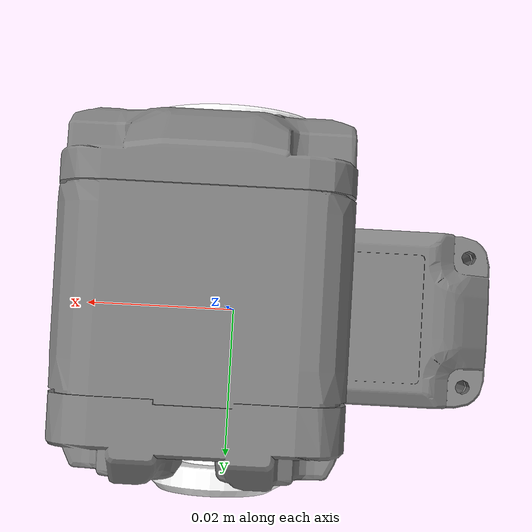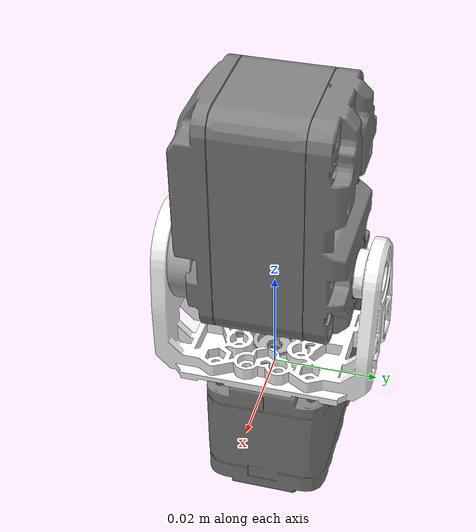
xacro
<?xml version="1.0"?>
<!-- HerkuleX PanTilt Chain -->

<robot name="HerkuleX" xmlns:xacro="http://ros.org/wiki/xacro">
  <!-- Import Rviz colors -->
  <xacro:include filename="$(find HerkuleX_description)/urdf/materials.xacro" />
  <!-- PI -->
  <xacro:property name="PI" value="3.1415926" />

  <link name="base"/>
  <joint name="fixed" type="fixed">
    <parent link="base"/>
    <child link="link1"/>
     <origin xyz="0 0 0.00313" rpy="0 0 0"/>
  </joint>

  <link name="link1">
    <collision>
      <origin xyz="0 0 0" rpy="0 0 0"/>
      <geometry>
        <mesh filename="package://HerkuleX_description/meshes//DRS_0101.stl" scale="0.001 0.001 0.001"/>
      </geometry>
     	<material name="DarkGrey"/>
    </collision>
    <visual>
      <origin xyz="0 0 0" rpy="0 0 0"/>
      <geometry>
        <mesh filename="package://HerkuleX_description/meshes//DRS_0101.stl" scale="0.001 0.001 0.001"/>
      </geometry>
      	<material name="DarkGrey"/>
    </visual>
    <inertial>
      <origin xyz="0 0 0" rpy="0 0 0"/>
      <mass value="1"/>
      <inertia ixx="1.0" ixy="0.0" ixz="0.0" iyy="1.0" iyz="0.0" izz="1.0"/>
    </inertial>
  </link>

  <joint name="joint1" type="revolute">
    <parent link="link1"/>
    <child link="horn1"/>
    <origin xyz="0 0 0" rpy="0 0 0"/>
    <axis xyz="0 0 1"/>
    <limit effort="30" lower="-2.617" upper="2.617" velocity="1.571"/>
  </joint>

  <link name="horn1">
    <collision>
      <origin xyz="0 0 0" rpy="0 0 0"/>
      <geometry>
        <mesh filename="package://HerkuleX_description/meshes//horn.stl" scale="0.001 0.001 0.001"/>
      </geometry>
     	<material name="Grey"/>
    </collision>
    <visual>
      <origin xyz="0 0 0" rpy="0 0 0"/>
      <geometry>
        <mesh filename="package://HerkuleX_description/meshes//horn.stl" scale="0.001 0.001 0.001"/>
      </geometry>
      	<material name="Grey"/>
    </visual>
    <inertial>
      <origin xyz="0 0 0" rpy="0 0 0"/>
      <mass value="1"/>
      <inertia ixx="1.0" ixy="0.0" ixz="0.0" iyy="1.0" iyz="0.0" izz="1.0"/>
    </inertial>
  </link>

  <joint name="fixed1" type="fixed">
    <parent link="horn1"/>
    <child link="DRB_0009"/>
  </joint>

  <link name="DRB_0009">
    <collision>
      <origin xyz="0 0 0" rpy="0 0 0"/>
      <geometry>
        <mesh filename="package://HerkuleX_description/meshes//DRB_0009.stl" scale="0.001 0.001 0.001"/>
      </geometry>
     	<material name="White"/>
    </collision>
    <visual>
      <origin xyz="0 0 0" rpy="0 0 0"/>
      <geometry>
        <mesh filename="package://HerkuleX_description/meshes//DRB_0009.stl" scale="0.001 0.001 0.001"/>
      </geometry>
      	<material name="White"/>
    </visual>
    <inertial>
      <origin xyz="0 0 0" rpy="0 0 0"/>
      <mass value="1"/>
      <inertia ixx="1.0" ixy="0.0" ixz="0.0" iyy="1.0" iyz="0.0" izz="1.0"/>
    </inertial>
  </link>

  <joint name="fixed2" type="fixed">
    <parent link="DRB_0009"/>
    <child link="horn2"/>
  </joint>

  <link name="horn2">
    <collision>
      <origin xyz="0 -0.016 0.0215" rpy="${PI/2} 0 0"/>
      <geometry>
        <mesh filename="package://HerkuleX_description/meshes//horn.stl" scale="0.001 0.001 0.001"/>
      </geometry>
     	<material name="Grey"/>
    </collision>
    <visual>
      <origin xyz="0 -0.016 0.0215" rpy="${PI/2} 0 0"/>
      <geometry>
        <mesh filename="package://HerkuleX_description/meshes//horn.stl" scale="0.001 0.001 0.001"/>
      </geometry>
      	<material name="Grey"/>
    </visual>
    <inertial>
      <origin xyz="0 0 0" rpy="0 0 0"/>
      <mass value="1"/>
      <inertia ixx="1.0" ixy="0.0" ixz="0.0" iyy="1.0" iyz="0.0" izz="1.0"/>
    </inertial>
  </link>

  <joint name="joint2" type="revolute">
    <parent link="horn2"/>
    <child link="link2"/>
    <origin xyz="0 -0.016 0.0215 " rpy="${PI/2} ${PI/2} 0"/>
    <axis xyz="0 0 -1"/>
    <limit effort="30" lower="-1.5708" upper="1.5708" velocity="1.571"/>
  </joint>

  <link name="link2">
    <collision>
      <origin xyz="0 0 0" rpy="0 0 0"/>
      <geometry>
        <mesh filename="package://HerkuleX_description/meshes//DRS_0101.stl" scale="0.001 0.001 0.001"/>
      </geometry>
     	<material name="DarkGrey"/>
    </collision>
    <visual>
     <origin xyz="0 0 0" rpy="0 0 0"/>
      <geometry>
        <mesh filename="package://HerkuleX_description/meshes//DRS_0101.stl" scale="0.001 0.001 0.001"/>
      </geometry>
      	<material name="DarkGrey"/>
    </visual>
    <inertial>
      <origin xyz="0 0 0" rpy="0 0 0"/>
      <mass value="1"/>
      <inertia ixx="1.0" ixy="0.0" ixz="0.0" iyy="1.0" iyz="0.0" izz="1.0"/>
    </inertial>
  </link>

</robot>

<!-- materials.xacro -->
<robot>

  <!-- Put all the color definitions in a separate file -->

  <material name="Black">
    <color rgba="0.2 0.2 0.2 0.8"/>
  </material>

  <material name="Orange">
    <color rgba="1.0  0.55 0.0 0.9"/>
  </material>

  <material name="Grey">
    <color rgba="0.7 0.7 0.7 1.0"/>
  </material>

  <material name="DarkGrey">
    <color rgba="0.5 0.5 0.5 1.0"/>
  </material>

  <material name="Red">
    <color rgba="0.8 0.0 0.0 0.9"/>
  </material>

  <material name="White">
    <color rgba="1.0 1.0 1.0 1.0"/>
  </material>

  <material name="OffWhite">
    <color rgba="0.8 0.8 0.8 0.95"/>
  </material>

  <material name="Blue">
    <color rgba="0.0 0.0 0.8 0.9"/>
  </material>

  <material name="Green">
    <color rgba="0.0 0.8 0.0 0.9"/>
  </material>

</robot>
